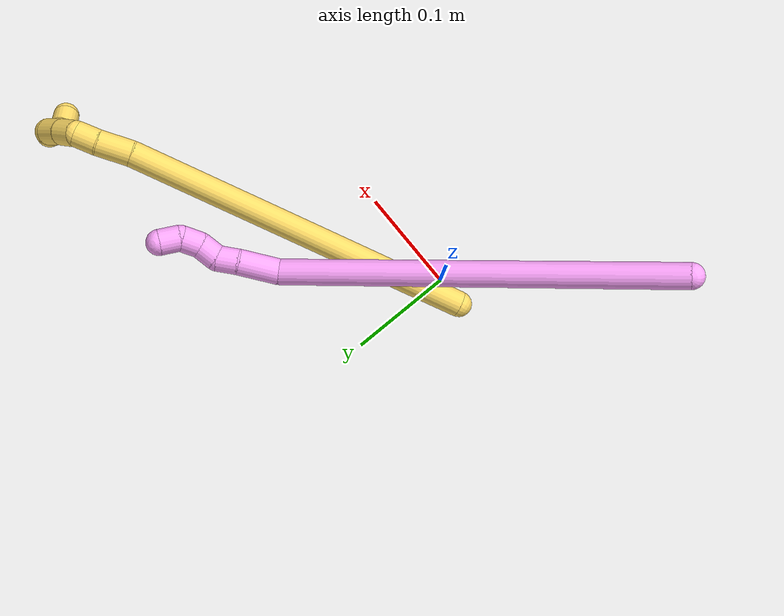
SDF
<sdf version="1.7">
 <world name="default">
  <model name="photoneo_s_sensor">
   <static>1</static>
   <pose>0 0 2 1.57079 1.57079 3.14159</pose>
   <link name="link">
    <inertial><mass>0.1</mass></inertial>
    <sensor name="sensor" type="depth">
     <update_rate>30</update_rate>
     <camera>
      <horizontal_fov>1.22</horizontal_fov>
      <image><width>1920</width><height>1200</height><format>B8G8R8</format></image>
      <clip><near>0.1</near><far>4</far></clip>
      <depth_camera><output>points</output></depth_camera>
     </camera>
     <plugin name="camera_plugin" filename="libgazebo_ros_depth_camera.so">
      <baseline>0.2</baseline>
      <alwaysOn>1</alwaysOn>
      <updateRate>0.0</updateRate>
      <cameraName>camera_ir</cameraName>
      <imageTopicName>/camera/color/image_raw</imageTopicName>
      <cameraInfoTopicName>/camera/color/camera_info</cameraInfoTopicName>
      <depthImageTopicName>/camera/depth/image_raw</depthImageTopicName>
      <depthImageCameraInfoTopicName>/camera/depth/camera_info</depthImageCameraInfoTopicName>
      <pointCloudTopicName>/camera/depth/points</pointCloudTopicName>
      <frameName>fr_optical</frameName>
      <pointCloudCutoff>0.1</pointCloudCutoff>
      <pointCloudCutoffMax>2.0</pointCloudCutoffMax>
      <distortionK1>0</distortionK1>
      <distortionK2>0</distortionK2>
      <distortionK3>0</distortionK3>
      <distortionT1>0</distortionT1>
      <distortionT2>0</distortionT2>
      <CxPrime>0</CxPrime>
      <Cx>0</Cx>
      <Cy>0</Cy>
      <focalLength>0</focalLength>
      <hackBaseline>0</hackBaseline>
     </plugin>
    </sensor>
   </link>
  </model>
  <model name="bin">
   <static>1</static>
   <link name="bottom">
    <collision name="collision-bottom">
     <pose>0 0 -0.01 0 -0 0</pose>
     <geometry><box><size>0.8 0.6 0.02</size></box></geometry>
     <surface>
      <friction><ode><mu>100</mu><mu2>100</mu2></ode></friction>
      <contact><collide_bitmask>65535</collide_bitmask></contact>
     </surface>
    </collision>
   </link>
   <link name="west_wall">
    <collision name="collision-west_wall">
     <pose>-0.41 0 0.1 0 -0 0</pose>
     <geometry><box><size>0.02 0.6 0.2</size></box></geometry>
     <surface>
      <friction><ode><mu>100</mu><mu2>100</mu2></ode></friction>
      <contact><collide_bitmask>65535</collide_bitmask></contact>
     </surface>
    </collision>
   </link>
   <link name="east_wall">
    <collision name="collision-east_wall">
     <pose>0.41 0 0.1 0 -0 0</pose>
     <geometry><box><size>0.02 0.6 0.2</size></box></geometry>
     <surface>
      <friction><ode><mu>100</mu><mu2>100</mu2></ode></friction>
      <contact><collide_bitmask>65535</collide_bitmask></contact>
     </surface>
    </collision>
   </link>
   <link name="south_wall">
    <collision name="collision-south_wall">
     <pose>0 -0.31 0.1 0 -0 0</pose>
     <geometry><box><size>0.8 0.02 0.2</size></box></geometry>
     <surface>
      <friction><ode><mu>100</mu><mu2>100</mu2></ode></friction>
      <contact><collide_bitmask>65535</collide_bitmask></contact>
     </surface>
    </collision>
   </link>
   <link name="north_wall">
    <collision name="collision-north_wall">
     <pose>0 0.31 0.1 0 -0 0</pose>
     <geometry><box><size>0.8 0.02 0.2</size></box></geometry>
     <surface>
      <friction><ode><mu>100</mu><mu2>100</mu2></ode></friction>
      <contact><collide_bitmask>65535</collide_bitmask></contact>
     </surface>
    </collision>
   </link>
  </model>
  <model name="4">
   <static>0</static>
   <link name="4">
    <collision name="collision-cylinder-e_1_1_4">
     <pose>0.185373 0.011708 0.038086 -0.298246 1.35907 -0.241572</pose>
     <geometry><cylinder><radius>0.0125</radius><length>0.379213</length></cylinder></geometry>
     <surface>
      <friction><ode><mu>1.16</mu><mu2>1.16</mu2><slip1>0</slip1><slip2>0</slip2></ode></friction>
      <contact><ode><kp>1e+06</kp><kd>1</kd><max_vel>0</max_vel><min_depth>0.001</min_depth></ode></contact>
     </surface>
    </collision>
    <visual name="visual-cylinder-e_1_1_4">
     <pose>0.185373 0.011708 0.038086 -0.298246 1.35907 -0.241572</pose>
     <geometry><cylinder><radius>0.0125</radius><length>0.379213</length></cylinder></geometry>
     <material><ambient>1 0.65098 0.996078 1</ambient></material>
    </visual>
    <collision name="collision-cylinder-e_2_4_5">
     <pose>0.387903 0.018875 0.08534 0.459906 1.03309 0.264371</pose>
     <geometry><cylinder><radius>0.0125</radius><length>0.039954</length></cylinder></geometry>
     <surface>
      <friction><ode><mu>1.16</mu><mu2>1.16</mu2><slip1>0</slip1><slip2>0</slip2></ode></friction>
      <contact><ode><kp>1e+06</kp><kd>1</kd><max_vel>0</max_vel><min_depth>0.001</min_depth></ode></contact>
     </surface>
    </collision>
    <visual name="visual-cylinder-e_2_4_5">
     <pose>0.387903 0.018875 0.08534 0.459906 1.03309 0.264371</pose>
     <geometry><cylinder><radius>0.0125</radius><length>0.039954</length></cylinder></geometry>
     <material><ambient>1 0.65098 0.996078 1</ambient></material>
    </visual>
    <collision name="collision-cylinder-e_3_5_6">
     <pose>0.414443 0.012971 0.098082 0.364187 1.18368 0.246304</pose>
     <geometry><cylinder><radius>0.0125</radius><length>0.020261</length></cylinder></geometry>
     <surface>
      <friction><ode><mu>1.16</mu><mu2>1.16</mu2><slip1>0</slip1><slip2>0</slip2></ode></friction>
      <contact><ode><kp>1e+06</kp><kd>1</kd><max_vel>0</max_vel><min_depth>0.001</min_depth></ode></contact>
     </surface>
    </collision>
    <visual name="visual-cylinder-e_3_5_6">
     <pose>0.414443 0.012971 0.098082 0.364187 1.18368 0.246304</pose>
     <geometry><cylinder><radius>0.0125</radius><length>0.020261</length></cylinder></geometry>
     <material><ambient>1 0.65098 0.996078 1</ambient></material>
    </visual>
    <collision name="collision-cylinder-e_4_6_7">
     <pose>0.431432 0.005609 0.104366 1.14652 0.857497 0.57391</pose>
     <geometry><cylinder><radius>0.0125</radius><length>0.020123</length></cylinder></geometry>
     <surface>
      <friction><ode><mu>1.16</mu><mu2>1.16</mu2><slip1>0</slip1><slip2>0</slip2></ode></friction>
      <contact><ode><kp>1e+06</kp><kd>1</kd><max_vel>0</max_vel><min_depth>0.001</min_depth></ode></contact>
     </surface>
    </collision>
    <visual name="visual-cylinder-e_4_6_7">
     <pose>0.431432 0.005609 0.104366 1.14652 0.857497 0.57391</pose>
     <geometry><cylinder><radius>0.0125</radius><length>0.020123</length></cylinder></geometry>
     <material><ambient>1 0.65098 0.996078 1</ambient></material>
    </visual>
    <collision name="collision-cylinder-e_5_7_8">
     <pose>0.446387 -0.003964 0.113025 0.540915 0.813933 0.237878</pose>
     <geometry><cylinder><radius>0.0125</radius><length>0.020212</length></cylinder></geometry>
     <surface>
      <friction><ode><mu>1.16</mu><mu2>1.16</mu2><slip1>0</slip1><slip2>0</slip2></ode></friction>
      <contact><ode><kp>1e+06</kp><kd>1</kd><max_vel>0</max_vel><min_depth>0.001</min_depth></ode></contact>
     </surface>
    </collision>
    <visual name="visual-cylinder-e_5_7_8">
     <pose>0.446387 -0.003964 0.113025 0.540915 0.813933 0.237878</pose>
     <geometry><cylinder><radius>0.0125</radius><length>0.020212</length></cylinder></geometry>
     <material><ambient>1 0.65098 0.996078 1</ambient></material>
    </visual>
    <collision name="collision-cylinder-e_6_8_2">
     <pose>0.46176 -0.005545 0.124804 -0.329177 0.916062 -0.163401</pose>
     <geometry><cylinder><radius>0.0125</radius><length>0.020237</length></cylinder></geometry>
     <surface>
      <friction><ode><mu>1.16</mu><mu2>1.16</mu2><slip1>0</slip1><slip2>0</slip2></ode></friction>
      <contact><ode><kp>1e+06</kp><kd>1</kd><max_vel>0</max_vel><min_depth>0.001</min_depth></ode></contact>
     </surface>
    </collision>
    <visual name="visual-cylinder-e_6_8_2">
     <pose>0.46176 -0.005545 0.124804 -0.329177 0.916062 -0.163401</pose>
     <geometry><cylinder><radius>0.0125</radius><length>0.020237</length></cylinder></geometry>
     <material><ambient>1 0.65098 0.996078 1</ambient></material>
    </visual>
    <collision name="collision-sphere-2">
     <pose>0.469786 -0.003553 0.130635 0 -0 0</pose>
     <geometry><sphere><radius>0.0125</radius></sphere></geometry>
     <surface>
      <friction><ode><mu>1.16</mu><mu2>1.16</mu2><slip1>0</slip1><slip2>0</slip2></ode></friction>
      <contact><ode><kp>1e+06</kp><kd>1</kd><max_vel>0</max_vel><min_depth>0.001</min_depth></ode></contact>
     </surface>
    </collision>
    <visual name="visual-sphere-2">
     <pose>0.469786 -0.003553 0.130635 0 -0 0</pose>
     <geometry><sphere><radius>0.0125</radius></sphere></geometry>
     <material><ambient>1 0.65098 0.996078 1</ambient></material>
    </visual>
    <collision name="collision-sphere-4">
     <pose>0.370745 0.023416 0.076171 0 -0 0</pose>
     <geometry><sphere><radius>0.0125</radius></sphere></geometry>
     <surface>
      <friction><ode><mu>1.16</mu><mu2>1.16</mu2><slip1>0</slip1><slip2>0</slip2></ode></friction>
      <contact><ode><kp>1e+06</kp><kd>1</kd><max_vel>0</max_vel><min_depth>0.001</min_depth></ode></contact>
     </surface>
    </collision>
    <visual name="visual-sphere-4">
     <pose>0.370745 0.023416 0.076171 0 -0 0</pose>
     <geometry><sphere><radius>0.0125</radius></sphere></geometry>
     <material><ambient>1 0.65098 0.996078 1</ambient></material>
    </visual>
    <collision name="collision-sphere-1">
     <geometry><sphere><radius>0.0125</radius></sphere></geometry>
     <surface>
      <friction><ode><mu>1.16</mu><mu2>1.16</mu2><slip1>0</slip1><slip2>0</slip2></ode></friction>
      <contact><ode><kp>1e+06</kp><kd>1</kd><max_vel>0</max_vel><min_depth>0.001</min_depth></ode></contact>
     </surface>
    </collision>
    <visual name="visual-sphere-1">
     <geometry><sphere><radius>0.0125</radius></sphere></geometry>
     <material><ambient>1 0.65098 0.996078 1</ambient></material>
    </visual>
    <collision name="collision-sphere-8">
     <pose>0.453734 -0.007537 0.118973 0 -0 0</pose>
     <geometry><sphere><radius>0.0125</radius></sphere></geometry>
     <surface>
      <friction><ode><mu>1.16</mu><mu2>1.16</mu2><slip1>0</slip1><slip2>0</slip2></ode></friction>
      <contact><ode><kp>1e+06</kp><kd>1</kd><max_vel>0</max_vel><min_depth>0.001</min_depth></ode></contact>
     </surface>
    </collision>
    <visual name="visual-sphere-8">
     <pose>0.453734 -0.007537 0.118973 0 -0 0</pose>
     <geometry><sphere><radius>0.0125</radius></sphere></geometry>
     <material><ambient>1 0.65098 0.996078 1</ambient></material>
    </visual>
    <collision name="collision-sphere-5">
     <pose>0.405061 0.014333 0.094508 0 -0 0</pose>
     <geometry><sphere><radius>0.0125</radius></sphere></geometry>
     <surface>
      <friction><ode><mu>1.16</mu><mu2>1.16</mu2><slip1>0</slip1><slip2>0</slip2></ode></friction>
      <contact><ode><kp>1e+06</kp><kd>1</kd><max_vel>0</max_vel><min_depth>0.001</min_depth></ode></contact>
     </surface>
    </collision>
    <visual name="visual-sphere-5">
     <pose>0.405061 0.014333 0.094508 0 -0 0</pose>
     <geometry><sphere><radius>0.0125</radius></sphere></geometry>
     <material><ambient>1 0.65098 0.996078 1</ambient></material>
    </visual>
    <collision name="collision-sphere-6">
     <pose>0.423824 0.011609 0.101656 0 -0 0</pose>
     <geometry><sphere><radius>0.0125</radius></sphere></geometry>
     <surface>
      <friction><ode><mu>1.16</mu><mu2>1.16</mu2><slip1>0</slip1><slip2>0</slip2></ode></friction>
      <contact><ode><kp>1e+06</kp><kd>1</kd><max_vel>0</max_vel><min_depth>0.001</min_depth></ode></contact>
     </surface>
    </collision>
    <visual name="visual-sphere-6">
     <pose>0.423824 0.011609 0.101656 0 -0 0</pose>
     <geometry><sphere><radius>0.0125</radius></sphere></geometry>
     <material><ambient>1 0.65098 0.996078 1</ambient></material>
    </visual>
    <collision name="collision-sphere-7">
     <pose>0.43904 -0.000391 0.107076 0 -0 0</pose>
     <geometry><sphere><radius>0.0125</radius></sphere></geometry>
     <surface>
      <friction><ode><mu>1.16</mu><mu2>1.16</mu2><slip1>0</slip1><slip2>0</slip2></ode></friction>
      <contact><ode><kp>1e+06</kp><kd>1</kd><max_vel>0</max_vel><min_depth>0.001</min_depth></ode></contact>
     </surface>
    </collision>
    <visual name="visual-sphere-7">
     <pose>0.43904 -0.000391 0.107076 0 -0 0</pose>
     <geometry><sphere><radius>0.0125</radius></sphere></geometry>
     <material><ambient>1 0.65098 0.996078 1</ambient></material>
    </visual>
    <inertial>
     <pose>0.242479 0.010755 0.053499 0 -0 0</pose>
     <mass>0.5</mass>
     <inertia>
      <ixx>0.000746</ixx>
      <ixy>0</ixy>
      <ixz>0</ixz>
      <iyy>0.004329</iyy>
      <iyz>0</iyz>
      <izz>-0.004736</izz>
     </inertia>
    </inertial>
   </link>
   <pose>-0.14627 -0.161035 0.112007 -0.374103 0.365909 0.712868</pose>
  </model>
  <model name="5">
   <static>0</static>
   <link name="5">
    <collision name="collision-cylinder-e_1_1_4">
     <pose>0.022117 0.01073 0.168494 -0.063595 0.130259 -0.004149</pose>
     <geometry><cylinder><radius>0.0125</radius><length>0.340555</length></cylinder></geometry>
     <surface>
      <friction><ode><mu>1.16</mu><mu2>1.16</mu2><slip1>0</slip1><slip2>0</slip2></ode></friction>
      <contact><ode><kp>1e+06</kp><kd>1</kd><max_vel>0</max_vel><min_depth>0.001</min_depth></ode></contact>
     </surface>
    </collision>
    <visual name="visual-cylinder-e_1_1_4">
     <pose>0.022117 0.01073 0.168494 -0.063595 0.130259 -0.004149</pose>
     <geometry><cylinder><radius>0.0125</radius><length>0.340555</length></cylinder></geometry>
     <material><ambient>1 0.858824 0.4 1</ambient></material>
    </visual>
    <collision name="collision-cylinder-e_2_4_5">
     <pose>0.048376 0.022514 0.352597 -0.067453 0.258715 -0.008778</pose>
     <geometry><cylinder><radius>0.0125</radius><length>0.032369</length></cylinder></geometry>
     <surface>
      <friction><ode><mu>1.16</mu><mu2>1.16</mu2><slip1>0</slip1><slip2>0</slip2></ode></friction>
      <contact><ode><kp>1e+06</kp><kd>1</kd><max_vel>0</max_vel><min_depth>0.001</min_depth></ode></contact>
     </surface>
    </collision>
    <visual name="visual-cylinder-e_2_4_5">
     <pose>0.048376 0.022514 0.352597 -0.067453 0.258715 -0.008778</pose>
     <geometry><cylinder><radius>0.0125</radius><length>0.032369</length></cylinder></geometry>
     <material><ambient>1 0.858824 0.4 1</ambient></material>
    </visual>
    <collision name="collision-cylinder-e_3_5_6">
     <pose>0.055004 0.022843 0.378684 0.069152 0.232564 0.008081</pose>
     <geometry><cylinder><radius>0.0125</radius><length>0.021584</length></cylinder></geometry>
     <surface>
      <friction><ode><mu>1.16</mu><mu2>1.16</mu2><slip1>0</slip1><slip2>0</slip2></ode></friction>
      <contact><ode><kp>1e+06</kp><kd>1</kd><max_vel>0</max_vel><min_depth>0.001</min_depth></ode></contact>
     </surface>
    </collision>
    <visual name="visual-cylinder-e_3_5_6">
     <pose>0.055004 0.022843 0.378684 0.069152 0.232564 0.008081</pose>
     <geometry><cylinder><radius>0.0125</radius><length>0.021584</length></cylinder></geometry>
     <material><ambient>1 0.858824 0.4 1</ambient></material>
    </visual>
    <collision name="collision-cylinder-e_4_6_7">
     <pose>0.06362 0.016291 0.395737 0.72499 0.6091 0.237301</pose>
     <geometry><cylinder><radius>0.0125</radius><length>0.021425</length></cylinder></geometry>
     <surface>
      <friction><ode><mu>1.16</mu><mu2>1.16</mu2><slip1>0</slip1><slip2>0</slip2></ode></friction>
      <contact><ode><kp>1e+06</kp><kd>1</kd><max_vel>0</max_vel><min_depth>0.001</min_depth></ode></contact>
     </surface>
    </collision>
    <visual name="visual-cylinder-e_4_6_7">
     <pose>0.06362 0.016291 0.395737 0.72499 0.6091 0.237301</pose>
     <geometry><cylinder><radius>0.0125</radius><length>0.021425</length></cylinder></geometry>
     <material><ambient>1 0.858824 0.4 1</ambient></material>
    </visual>
    <collision name="collision-cylinder-e_5_7_8">
     <pose>0.076471 0.004277 0.408271 0.804302 0.664061 0.291228</pose>
     <geometry><cylinder><radius>0.0125</radius><length>0.021816</length></cylinder></geometry>
     <surface>
      <friction><ode><mu>1.16</mu><mu2>1.16</mu2><slip1>0</slip1><slip2>0</slip2></ode></friction>
      <contact><ode><kp>1e+06</kp><kd>1</kd><max_vel>0</max_vel><min_depth>0.001</min_depth></ode></contact>
     </surface>
    </collision>
    <visual name="visual-cylinder-e_5_7_8">
     <pose>0.076471 0.004277 0.408271 0.804302 0.664061 0.291228</pose>
     <geometry><cylinder><radius>0.0125</radius><length>0.021816</length></cylinder></geometry>
     <material><ambient>1 0.858824 0.4 1</ambient></material>
    </visual>
    <collision name="collision-cylinder-e_6_8_9">
     <pose>0.088494 -0.010882 0.413971 1.5996 0.533355 0.548184</pose>
     <geometry><cylinder><radius>0.0125</radius><length>0.020847</length></cylinder></geometry>
     <surface>
      <friction><ode><mu>1.16</mu><mu2>1.16</mu2><slip1>0</slip1><slip2>0</slip2></ode></friction>
      <contact><ode><kp>1e+06</kp><kd>1</kd><max_vel>0</max_vel><min_depth>0.001</min_depth></ode></contact>
     </surface>
    </collision>
    <visual name="visual-cylinder-e_6_8_9">
     <pose>0.088494 -0.010882 0.413971 1.5996 0.533355 0.548184</pose>
     <geometry><cylinder><radius>0.0125</radius><length>0.020847</length></cylinder></geometry>
     <material><ambient>1 0.858824 0.4 1</ambient></material>
    </visual>
    <collision name="collision-cylinder-e_7_9_10">
     <pose>0.092283 -0.029537 0.410507 1.89048 -0.146994 -0.203166</pose>
     <geometry><cylinder><radius>0.0125</radius><length>0.020622</length></cylinder></geometry>
     <surface>
      <friction><ode><mu>1.16</mu><mu2>1.16</mu2><slip1>0</slip1><slip2>0</slip2></ode></friction>
      <contact><ode><kp>1e+06</kp><kd>1</kd><max_vel>0</max_vel><min_depth>0.001</min_depth></ode></contact>
     </surface>
    </collision>
    <visual name="visual-cylinder-e_7_9_10">
     <pose>0.092283 -0.029537 0.410507 1.89048 -0.146994 -0.203166</pose>
     <geometry><cylinder><radius>0.0125</radius><length>0.020622</length></cylinder></geometry>
     <material><ambient>1 0.858824 0.4 1</ambient></material>
    </visual>
    <collision name="collision-cylinder-e_8_10_2">
     <pose>0.088347 -0.048941 0.41006 1.29423 -0.235627 -0.178408</pose>
     <geometry><cylinder><radius>0.0125</radius><length>0.020782</length></cylinder></geometry>
     <surface>
      <friction><ode><mu>1.16</mu><mu2>1.16</mu2><slip1>0</slip1><slip2>0</slip2></ode></friction>
      <contact><ode><kp>1e+06</kp><kd>1</kd><max_vel>0</max_vel><min_depth>0.001</min_depth></ode></contact>
     </surface>
    </collision>
    <visual name="visual-cylinder-e_8_10_2">
     <pose>0.088347 -0.048941 0.41006 1.29423 -0.235627 -0.178408</pose>
     <geometry><cylinder><radius>0.0125</radius><length>0.020782</length></cylinder></geometry>
     <material><ambient>1 0.858824 0.4 1</ambient></material>
    </visual>
    <collision name="collision-sphere-2">
     <pose>0.085921 -0.058661 0.412819 0 -0 0</pose>
     <geometry><sphere><radius>0.0125</radius></sphere></geometry>
     <surface>
      <friction><ode><mu>1.16</mu><mu2>1.16</mu2><slip1>0</slip1><slip2>0</slip2></ode></friction>
      <contact><ode><kp>1e+06</kp><kd>1</kd><max_vel>0</max_vel><min_depth>0.001</min_depth></ode></contact>
     </surface>
    </collision>
    <visual name="visual-sphere-2">
     <pose>0.085921 -0.058661 0.412819 0 -0 0</pose>
     <geometry><sphere><radius>0.0125</radius></sphere></geometry>
     <material><ambient>1 0.858824 0.4 1</ambient></material>
    </visual>
    <collision name="collision-sphere-10">
     <pose>0.090773 -0.039221 0.407301 0 -0 0</pose>
     <geometry><sphere><radius>0.0125</radius></sphere></geometry>
     <surface>
      <friction><ode><mu>1.16</mu><mu2>1.16</mu2><slip1>0</slip1><slip2>0</slip2></ode></friction>
      <contact><ode><kp>1e+06</kp><kd>1</kd><max_vel>0</max_vel><min_depth>0.001</min_depth></ode></contact>
     </surface>
    </collision>
    <visual name="visual-sphere-10">
     <pose>0.090773 -0.039221 0.407301 0 -0 0</pose>
     <geometry><sphere><radius>0.0125</radius></sphere></geometry>
     <material><ambient>1 0.858824 0.4 1</ambient></material>
    </visual>
    <collision name="collision-sphere-9">
     <pose>0.093793 -0.019854 0.413712 0 -0 0</pose>
     <geometry><sphere><radius>0.0125</radius></sphere></geometry>
     <surface>
      <friction><ode><mu>1.16</mu><mu2>1.16</mu2><slip1>0</slip1><slip2>0</slip2></ode></friction>
      <contact><ode><kp>1e+06</kp><kd>1</kd><max_vel>0</max_vel><min_depth>0.001</min_depth></ode></contact>
     </surface>
    </collision>
    <visual name="visual-sphere-9">
     <pose>0.093793 -0.019854 0.413712 0 -0 0</pose>
     <geometry><sphere><radius>0.0125</radius></sphere></geometry>
     <material><ambient>1 0.858824 0.4 1</ambient></material>
    </visual>
    <collision name="collision-sphere-4">
     <pose>0.044235 0.021459 0.336987 0 -0 0</pose>
     <geometry><sphere><radius>0.0125</radius></sphere></geometry>
     <surface>
      <friction><ode><mu>1.16</mu><mu2>1.16</mu2><slip1>0</slip1><slip2>0</slip2></ode></friction>
      <contact><ode><kp>1e+06</kp><kd>1</kd><max_vel>0</max_vel><min_depth>0.001</min_depth></ode></contact>
     </surface>
    </collision>
    <visual name="visual-sphere-4">
     <pose>0.044235 0.021459 0.336987 0 -0 0</pose>
     <geometry><sphere><radius>0.0125</radius></sphere></geometry>
     <material><ambient>1 0.858824 0.4 1</ambient></material>
    </visual>
    <collision name="collision-sphere-1">
     <geometry><sphere><radius>0.0125</radius></sphere></geometry>
     <surface>
      <friction><ode><mu>1.16</mu><mu2>1.16</mu2><slip1>0</slip1><slip2>0</slip2></ode></friction>
      <contact><ode><kp>1e+06</kp><kd>1</kd><max_vel>0</max_vel><min_depth>0.001</min_depth></ode></contact>
     </surface>
    </collision>
    <visual name="visual-sphere-1">
     <geometry><sphere><radius>0.0125</radius></sphere></geometry>
     <material><ambient>1 0.858824 0.4 1</ambient></material>
    </visual>
    <collision name="collision-sphere-8">
     <pose>0.083194 -0.00191 0.414229 0 -0 0</pose>
     <geometry><sphere><radius>0.0125</radius></sphere></geometry>
     <surface>
      <friction><ode><mu>1.16</mu><mu2>1.16</mu2><slip1>0</slip1><slip2>0</slip2></ode></friction>
      <contact><ode><kp>1e+06</kp><kd>1</kd><max_vel>0</max_vel><min_depth>0.001</min_depth></ode></contact>
     </surface>
    </collision>
    <visual name="visual-sphere-8">
     <pose>0.083194 -0.00191 0.414229 0 -0 0</pose>
     <geometry><sphere><radius>0.0125</radius></sphere></geometry>
     <material><ambient>1 0.858824 0.4 1</ambient></material>
    </visual>
    <collision name="collision-sphere-5">
     <pose>0.052516 0.023569 0.368208 0 -0 0</pose>
     <geometry><sphere><radius>0.0125</radius></sphere></geometry>
     <surface>
      <friction><ode><mu>1.16</mu><mu2>1.16</mu2><slip1>0</slip1><slip2>0</slip2></ode></friction>
      <contact><ode><kp>1e+06</kp><kd>1</kd><max_vel>0</max_vel><min_depth>0.001</min_depth></ode></contact>
     </surface>
    </collision>
    <visual name="visual-sphere-5">
     <pose>0.052516 0.023569 0.368208 0 -0 0</pose>
     <geometry><sphere><radius>0.0125</radius></sphere></geometry>
     <material><ambient>1 0.858824 0.4 1</ambient></material>
    </visual>
    <collision name="collision-sphere-6">
     <pose>0.057491 0.022117 0.389161 0 -0 0</pose>
     <geometry><sphere><radius>0.0125</radius></sphere></geometry>
     <surface>
      <friction><ode><mu>1.16</mu><mu2>1.16</mu2><slip1>0</slip1><slip2>0</slip2></ode></friction>
      <contact><ode><kp>1e+06</kp><kd>1</kd><max_vel>0</max_vel><min_depth>0.001</min_depth></ode></contact>
     </surface>
    </collision>
    <visual name="visual-sphere-6">
     <pose>0.057491 0.022117 0.389161 0 -0 0</pose>
     <geometry><sphere><radius>0.0125</radius></sphere></geometry>
     <material><ambient>1 0.858824 0.4 1</ambient></material>
    </visual>
    <collision name="collision-sphere-7">
     <pose>0.069749 0.010465 0.402313 0 -0 0</pose>
     <geometry><sphere><radius>0.0125</radius></sphere></geometry>
     <surface>
      <friction><ode><mu>1.16</mu><mu2>1.16</mu2><slip1>0</slip1><slip2>0</slip2></ode></friction>
      <contact><ode><kp>1e+06</kp><kd>1</kd><max_vel>0</max_vel><min_depth>0.001</min_depth></ode></contact>
     </surface>
    </collision>
    <visual name="visual-sphere-7">
     <pose>0.069749 0.010465 0.402313 0 -0 0</pose>
     <geometry><sphere><radius>0.0125</radius></sphere></geometry>
     <material><ambient>1 0.858824 0.4 1</ambient></material>
    </visual>
    <inertial>
     <pose>0.037801 0.00693 0.239942 0 -0 0</pose>
     <mass>0.5</mass>
     <inertia>
      <ixx>0.003283</ixx>
      <ixy>0</ixy>
      <ixz>0</ixz>
      <iyy>0.00329</iyy>
      <iyz>0</iyz>
      <izz>-0.000603</izz>
     </inertia>
    </inertial>
   </link>
   <pose>-0.029517 0.002416 0.011495 1.30798 0.532232 1.76748</pose>
  </model>
 </world>
</sdf>
